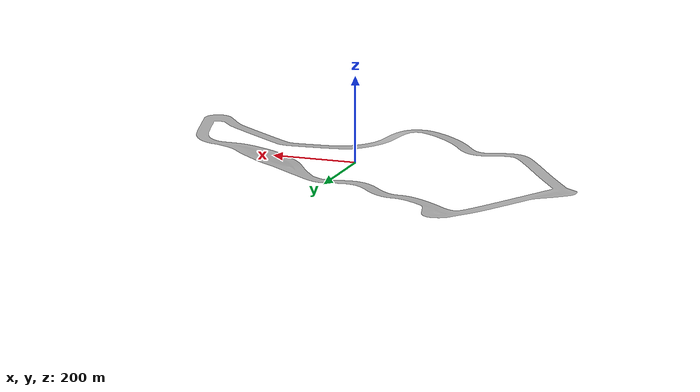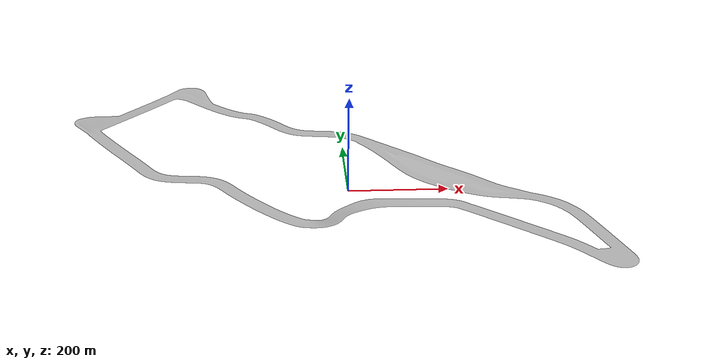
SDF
<?xml version="1.0" ?>
<sdf version="1.6">
  <model name="raceway">
    <static>true</static>
    <link name="link">

      <collision name="collision">
        <geometry>
          <mesh>
            <uri>model://raceway/meshes/Raceway.obj</uri>
            <scale>0.0254 0.0254 0.0254</scale>
          </mesh>
        </geometry>
      </collision>

      <visual name="visual">
        <geometry>
          <mesh>
            <uri>model://raceway/meshes/Raceway.obj</uri>
            <scale>0.0254 0.0254 0.0254</scale>
          </mesh>
        </geometry>
      </visual>
    </link>
  </model>
</sdf>
